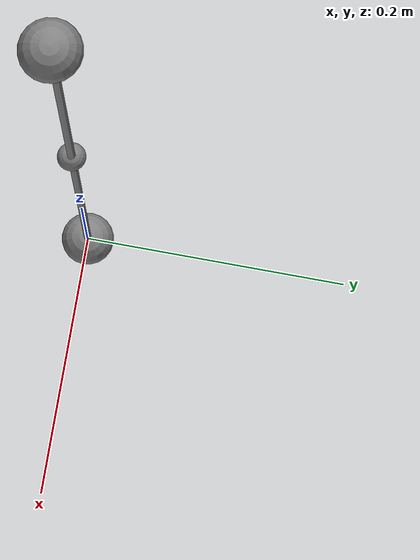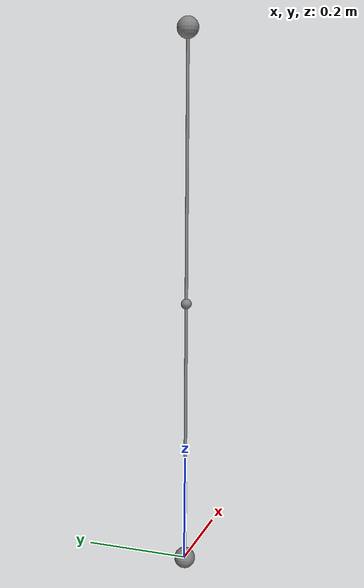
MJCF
<mujoco model="pulley">
  <option gravity="0 0 0" timestep="0.002"/>
  <compiler angle="radian"/>
  <worldbody>
    <body name="top" pos="0 0 1">
      <joint name="j_top" type="slide" axis="0 0 1"/>
      <geom type="sphere" size="0.02" mass="0.5"/>
      <site name="s1" pos="0 0 0"/>
    </body>
    <body name="mid" pos="0 0 0.5">
      <geom type="sphere" size="0.01" mass="0.1" contype="0" conaffinity="0"/>
      <site name="s2" pos="0 0 0"/>
      <site name="s3" pos="0 0 0"/>
    </body>
    <body name="bot" pos="0 0 0">
      <joint name="j_bot" type="slide" axis="0 0 1"/>
      <geom type="sphere" size="0.02" mass="0.5"/>
      <site name="s4" pos="0 0 0"/>
    </body>
  </worldbody>
  <tendon>
    <spatial name="t1">
      <site site="s1"/>
      <site site="s2"/>
      <pulley divisor="2"/>
      <site site="s3"/>
      <site site="s4"/>
    </spatial>
  </tendon>
</mujoco>
